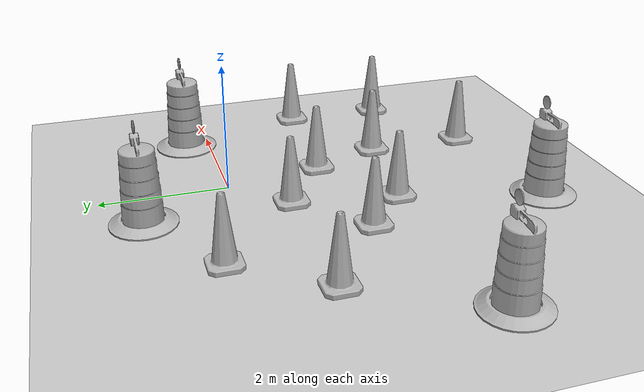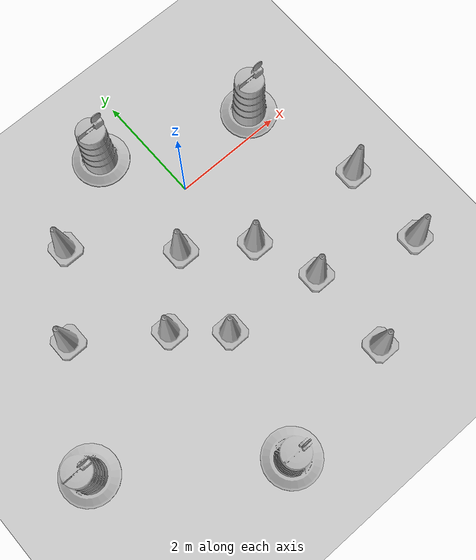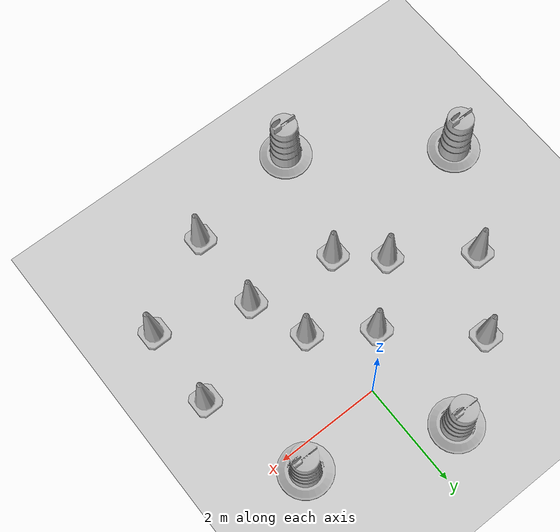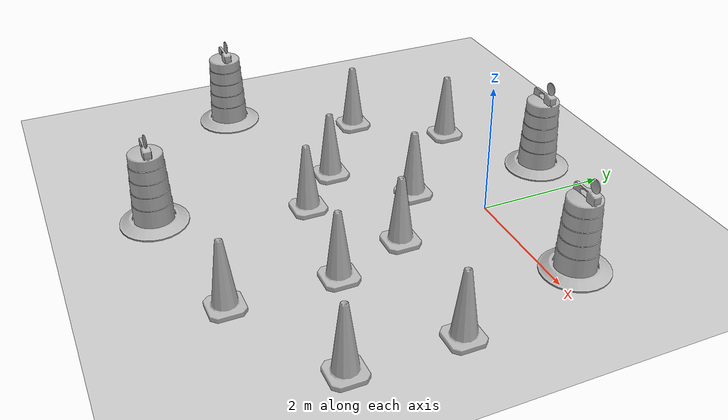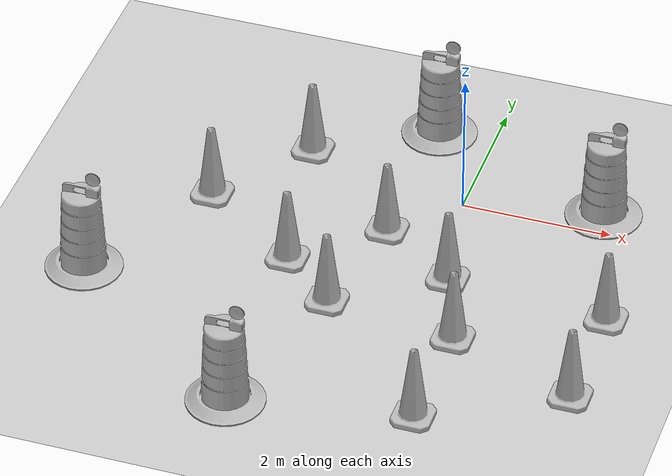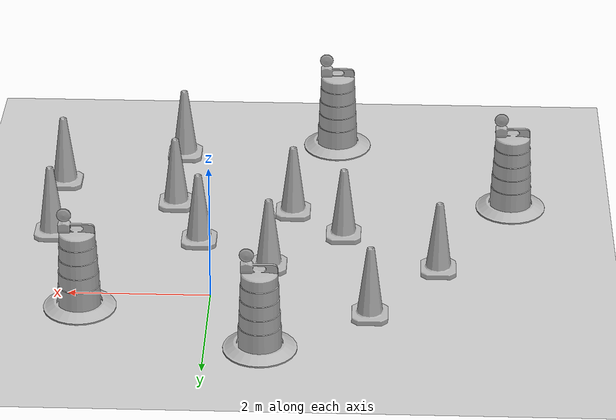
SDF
<sdf version="1.7">
 <world name="default">
  <light name="sun" type="directional">
   <pose>0 0 10 0 -0 0</pose>
   <diffuse>0.8 0.8 0.8 1</diffuse>
   <specular>0.2 0.2 0.2 1</specular>
   <attenuation>
    <range>1000</range>
    <constant>0.9</constant>
    <linear>0.01</linear>
    <quadratic>0.001</quadratic>
   </attenuation>
   <direction>-0.5 0.1 -0.9</direction>
   <spot><inner_angle>0</inner_angle><outer_angle>0</outer_angle><falloff>0</falloff></spot>
  </light>
  <model name="ground_plane">
   <static>1</static>
   <link name="link">
    <collision name="collision">
     <geometry><plane><normal>0 0 1</normal><size>100 100</size></plane></geometry>
     <surface>
      <contact><collide_bitmask>65535</collide_bitmask></contact>
      <friction><ode><mu>100</mu><mu2>50</mu2></ode></friction>
     </surface>
    </collision>
    <visual name="visual">
     <cast_shadows>0</cast_shadows>
     <geometry><plane><normal>0 0 1</normal><size>100 100</size></plane></geometry>
     <material>
      <script><uri>file://media/materials/scripts/gazebo.material</uri><name>Gazebo/Grey</name></script>
     </material>
    </visual>
   </link>
  </model>
  <gravity>0 0 -9.8</gravity>
  <magnetic_field>6e-06 2.3e-05 -4.2e-05</magnetic_field>
  <atmosphere type="adiabatic"/>
  <physics type="ode">
   <max_step_size>0.001</max_step_size>
   <real_time_factor>1</real_time_factor>
   <real_time_update_rate>1000</real_time_update_rate>
  </physics>
  <scene><ambient>0.4 0.4 0.4 1</ambient><background>0.7 0.7 0.7 1</background><shadows>1</shadows></scene>
  <spherical_coordinates>
   <surface_model>EARTH_WGS84</surface_model>
   <latitude_deg>0</latitude_deg>
   <longitude_deg>0</longitude_deg>
   <elevation>0</elevation>
   <heading_deg>0</heading_deg>
  </spherical_coordinates>
  <model name="Construction Barrel">
   <link name="link">
    <inertial>
     <pose>0 0 0.4 0 -0 0</pose>
     <mass>500</mass>
     <inertia><ixx>51.2096</ixx><iyy>51.2096</iyy><izz>25</izz><ixy>0</ixy><ixz>0</ixz><iyz>0</iyz></inertia>
    </inertial>
    <collision name="collision">
     <geometry><mesh><uri>model://construction_barrel/meshes/construction_barrel.dae</uri></mesh></geometry>
    </collision>
    <visual name="visual">
     <geometry><mesh><uri>model://construction_barrel/meshes/construction_barrel.dae</uri></mesh></geometry>
    </visual>
   </link>
   <pose>-0.756363 1.39218 -0 1e-06 -1e-06 -4.4e-05</pose>
  </model>
  <model name="Construction Barrel_0">
   <link name="link">
    <inertial>
     <pose>0 0 0.4 0 -0 0</pose>
     <mass>500</mass>
     <inertia><ixx>51.2096</ixx><iyy>51.2096</iyy><izz>25</izz><ixy>0</ixy><ixz>0</ixz><iyz>0</iyz></inertia>
    </inertial>
    <collision name="collision">
     <geometry><mesh><uri>model://construction_barrel/meshes/construction_barrel.dae</uri></mesh></geometry>
    </collision>
    <visual name="visual">
     <geometry><mesh><uri>model://construction_barrel/meshes/construction_barrel.dae</uri></mesh></geometry>
    </visual>
   </link>
   <pose>1.80008 0.37709 -0 1e-06 -1e-06 -4.4e-05</pose>
  </model>
  <model name="Construction Cone">
   <link name="link">
    <collision name="collision">
     <geometry>
      <mesh><scale>10 10 10</scale><uri>model://construction_cone/meshes/construction_cone.dae</uri></mesh>
     </geometry>
    </collision>
    <visual name="visual">
     <geometry>
      <mesh><scale>10 10 10</scale><uri>model://construction_cone/meshes/construction_cone.dae</uri></mesh>
     </geometry>
    </visual>
    <inertial>
     <inertia><ixx>1</ixx><ixy>0</ixy><ixz>0</ixz><iyy>1</iyy><iyz>0</iyz><izz>1</izz></inertia>
     <mass>1</mass>
    </inertial>
   </link>
   <pose>-1.82427 -1.7683 -1e-05 0 -0 0</pose>
  </model>
  <model name="Construction Cone_0">
   <link name="link">
    <collision name="collision">
     <geometry>
      <mesh><scale>10 10 10</scale><uri>model://construction_cone/meshes/construction_cone.dae</uri></mesh>
     </geometry>
    </collision>
    <visual name="visual">
     <geometry>
      <mesh><scale>10 10 10</scale><uri>model://construction_cone/meshes/construction_cone.dae</uri></mesh>
     </geometry>
    </visual>
    <inertial>
     <inertia><ixx>1</ixx><ixy>0</ixy><ixz>0</ixz><iyy>1</iyy><iyz>0</iyz><izz>1</izz></inertia>
     <mass>1</mass>
    </inertial>
   </link>
   <pose>-0.781384 -0.821674 -0 0 -1e-06 0</pose>
  </model>
  <model name="Construction Cone_1">
   <link name="link">
    <collision name="collision">
     <geometry>
      <mesh><scale>10 10 10</scale><uri>model://construction_cone/meshes/construction_cone.dae</uri></mesh>
     </geometry>
    </collision>
    <visual name="visual">
     <geometry>
      <mesh><scale>10 10 10</scale><uri>model://construction_cone/meshes/construction_cone.dae</uri></mesh>
     </geometry>
    </visual>
    <inertial>
     <inertia><ixx>1</ixx><ixy>0</ixy><ixz>0</ixz><iyy>1</iyy><iyz>0</iyz><izz>1</izz></inertia>
     <mass>1</mass>
    </inertial>
   </link>
   <pose>0.26256 -1.53262 -1e-05 -0 -0 -0</pose>
  </model>
  <model name="Construction Cone_2">
   <link name="link">
    <collision name="collision">
     <geometry>
      <mesh><scale>10 10 10</scale><uri>model://construction_cone/meshes/construction_cone.dae</uri></mesh>
     </geometry>
    </collision>
    <visual name="visual">
     <geometry>
      <mesh><scale>10 10 10</scale><uri>model://construction_cone/meshes/construction_cone.dae</uri></mesh>
     </geometry>
    </visual>
    <inertial>
     <inertia><ixx>1</ixx><ixy>0</ixy><ixz>0</ixz><iyy>1</iyy><iyz>0</iyz><izz>1</izz></inertia>
     <mass>1</mass>
    </inertial>
   </link>
   <pose>2.41102 -1.68664 0 -0 -0 -0</pose>
  </model>
  <model name="Construction Cone_3">
   <link name="link">
    <collision name="collision">
     <geometry>
      <mesh><scale>10 10 10</scale><uri>model://construction_cone/meshes/construction_cone.dae</uri></mesh>
     </geometry>
    </collision>
    <visual name="visual">
     <geometry>
      <mesh><scale>10 10 10</scale><uri>model://construction_cone/meshes/construction_cone.dae</uri></mesh>
     </geometry>
    </visual>
    <inertial>
     <inertia><ixx>1</ixx><ixy>0</ixy><ixz>0</ixz><iyy>1</iyy><iyz>0</iyz><izz>1</izz></inertia>
     <mass>1</mass>
    </inertial>
   </link>
   <pose>-2.23725 0.491302 -1e-05 -0 -0 -0</pose>
  </model>
  <model name="Construction Cone_4">
   <link name="link">
    <collision name="collision">
     <geometry>
      <mesh><scale>10 10 10</scale><uri>model://construction_cone/meshes/construction_cone.dae</uri></mesh>
     </geometry>
    </collision>
    <visual name="visual">
     <geometry>
      <mesh><scale>10 10 10</scale><uri>model://construction_cone/meshes/construction_cone.dae</uri></mesh>
     </geometry>
    </visual>
    <inertial>
     <inertia><ixx>1</ixx><ixy>0</ixy><ixz>0</ixz><iyy>1</iyy><iyz>0</iyz><izz>1</izz></inertia>
     <mass>1</mass>
    </inertial>
   </link>
   <pose>0.649682 -4.21961 0 -0 -0 -0</pose>
  </model>
  <model name="Construction Cone_5">
   <link name="link">
    <collision name="collision">
     <geometry>
      <mesh><scale>10 10 10</scale><uri>model://construction_cone/meshes/construction_cone.dae</uri></mesh>
     </geometry>
    </collision>
    <visual name="visual">
     <geometry>
      <mesh><scale>10 10 10</scale><uri>model://construction_cone/meshes/construction_cone.dae</uri></mesh>
     </geometry>
    </visual>
    <inertial>
     <inertia><ixx>1</ixx><ixy>0</ixy><ixz>0</ixz><iyy>1</iyy><iyz>0</iyz><izz>1</izz></inertia>
     <mass>1</mass>
    </inertial>
   </link>
   <pose>2.38815 -3.2576 -0 0 -0 0</pose>
  </model>
  <model name="Construction Cone_6">
   <link name="link">
    <collision name="collision">
     <geometry>
      <mesh><scale>10 10 10</scale><uri>model://construction_cone/meshes/construction_cone.dae</uri></mesh>
     </geometry>
    </collision>
    <visual name="visual">
     <geometry>
      <mesh><scale>10 10 10</scale><uri>model://construction_cone/meshes/construction_cone.dae</uri></mesh>
     </geometry>
    </visual>
    <inertial>
     <inertia><ixx>1</ixx><ixy>0</ixy><ixz>0</ixz><iyy>1</iyy><iyz>0</iyz><izz>1</izz></inertia>
     <mass>1</mass>
    </inertial>
   </link>
   <pose>-1.0681 -2.43416 -0 0 -0 0</pose>
  </model>
  <model name="Construction Cone_7">
   <link name="link">
    <collision name="collision">
     <geometry>
      <mesh><scale>10 10 10</scale><uri>model://construction_cone/meshes/construction_cone.dae</uri></mesh>
     </geometry>
    </collision>
    <visual name="visual">
     <geometry>
      <mesh><scale>10 10 10</scale><uri>model://construction_cone/meshes/construction_cone.dae</uri></mesh>
     </geometry>
    </visual>
    <inertial>
     <inertia><ixx>1</ixx><ixy>0</ixy><ixz>0</ixz><iyy>1</iyy><iyz>0</iyz><izz>1</izz></inertia>
     <mass>1</mass>
    </inertial>
   </link>
   <pose>0.673474 -2.64207 -0 0 -1e-06 0</pose>
  </model>
  <model name="Construction Cone_8">
   <link name="link">
    <collision name="collision">
     <geometry>
      <mesh><scale>10 10 10</scale><uri>model://construction_cone/meshes/construction_cone.dae</uri></mesh>
     </geometry>
    </collision>
    <visual name="visual">
     <geometry>
      <mesh><scale>10 10 10</scale><uri>model://construction_cone/meshes/construction_cone.dae</uri></mesh>
     </geometry>
    </visual>
    <inertial>
     <inertia><ixx>1</ixx><ixy>0</ixy><ixz>0</ixz><iyy>1</iyy><iyz>0</iyz><izz>1</izz></inertia>
     <mass>1</mass>
    </inertial>
   </link>
   <pose>-3.1927 -0.808436 -1e-06 1e-06 -2e-06 -0</pose>
  </model>
  <model name="Construction Barrel_1">
   <link name="link">
    <inertial>
     <pose>0 0 0.4 0 -0 0</pose>
     <mass>500</mass>
     <inertia><ixx>51.2096</ixx><iyy>51.2096</iyy><izz>25</izz><ixy>0</ixy><ixz>0</ixz><iyz>0</iyz></inertia>
    </inertial>
    <collision name="collision">
     <geometry><mesh><uri>model://construction_barrel/meshes/construction_barrel.dae</uri></mesh></geometry>
    </collision>
    <visual name="visual">
     <geometry><mesh><uri>model://construction_barrel/meshes/construction_barrel.dae</uri></mesh></geometry>
    </visual>
   </link>
   <pose>-4.26791 -2.71736 -0 1e-06 -1e-06 -3.8e-05</pose>
  </model>
  <model name="Construction Barrel_2">
   <link name="link">
    <inertial>
     <pose>0 0 0.4 0 -0 0</pose>
     <mass>500</mass>
     <inertia><ixx>51.2096</ixx><iyy>51.2096</iyy><izz>25</izz><ixy>0</ixy><ixz>0</ixz><iyz>0</iyz></inertia>
    </inertial>
    <collision name="collision">
     <geometry><mesh><uri>model://construction_barrel/meshes/construction_barrel.dae</uri></mesh></geometry>
    </collision>
    <visual name="visual">
     <geometry><mesh><uri>model://construction_barrel/meshes/construction_barrel.dae</uri></mesh></geometry>
    </visual>
   </link>
   <pose>-1.66777 -4.62266 0 0 0 -3.8e-05</pose>
  </model>
 </world>
</sdf>
